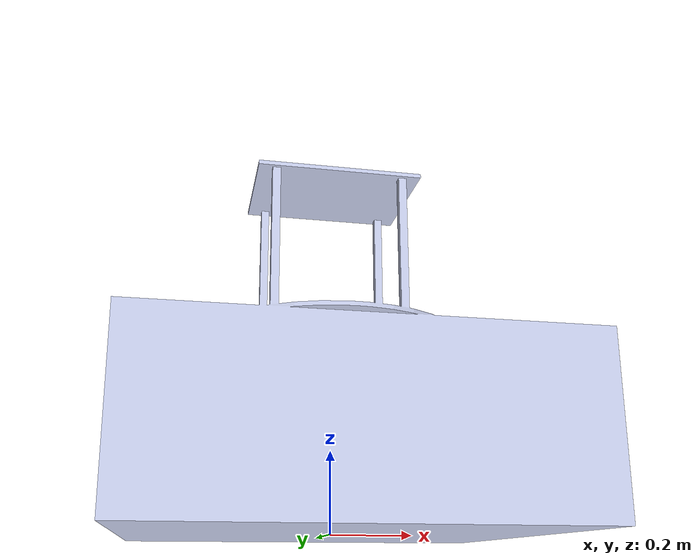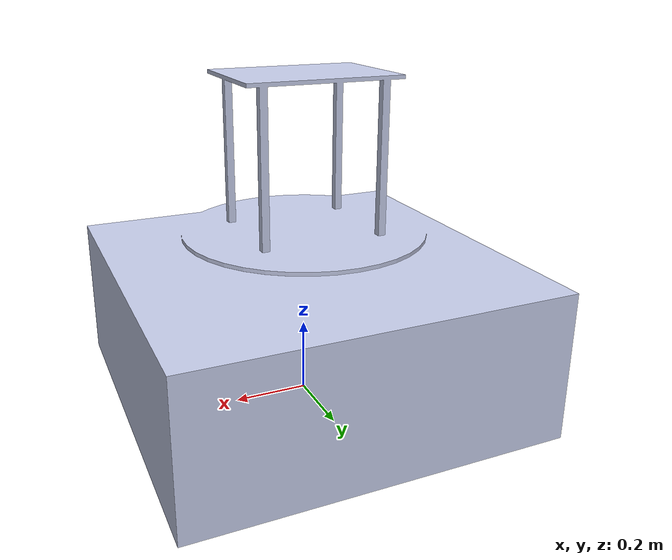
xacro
<?xml version="1.0"?>
<robot xmlns:xacro="http://ros.org/wiki/xacro" name="watchtower">
  <xacro:include filename="properties_watchtower.urdf.xacro"/>

  <gazebo reference="base_link">
    <material>Gazebo/Grey</material>
  </gazebo>
  <link
    name="base_link">
    <inertial>
      <origin
        xyz="-6.6859E-20 -9.7063E-17 0.20509"
        rpy="0 0 0" />
      <mass
        value="405.19" />
      <inertia
        ixx="0.80923"
        ixy="3.5773E-33"
        ixz="1.063E-17"
        iyy="0.80923"
        iyz="-2.7232E-16"
        izz="9.178E-32" />
    </inertial>
    <visual>
      <origin
        xyz="0 0 0"
        rpy="0 0 0" />
      <geometry>
        <mesh
          filename="package://wamv_description/mesh/BIOBOT_Base.STL" />
      </geometry>
      <material
        name="">
        <color
          rgba="0.79216 0.81961 0.93333 1" />
      </material>
    </visual>
    <collision>
      <origin
        xyz="0 0 0"
        rpy="0 0 0" />
      <geometry>
        <mesh
          filename="package://wamv_description/mesh/BIOBOT_Base.STL" />
      </geometry>
    </collision>
  </link>

  <joint name="base_link_joint" type="fixed">
    <origin xyz="0 0 0"/>
    <parent link="base_footprint2"/>
    <child link="base_link"/>
  </joint>

  <link name="base_footprint2"/>

</robot>
